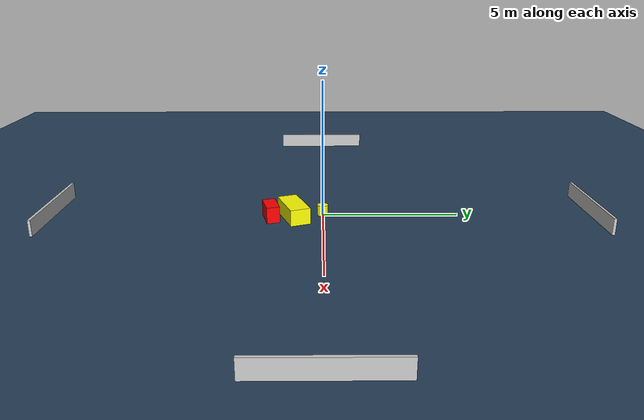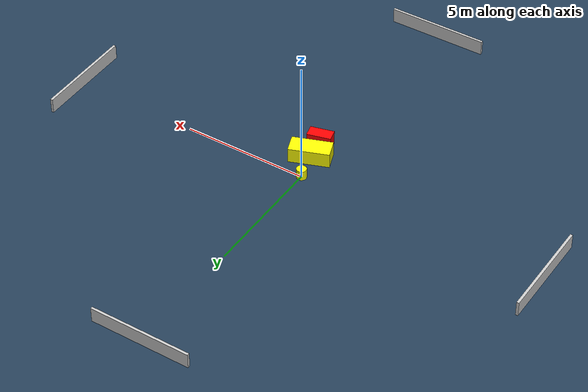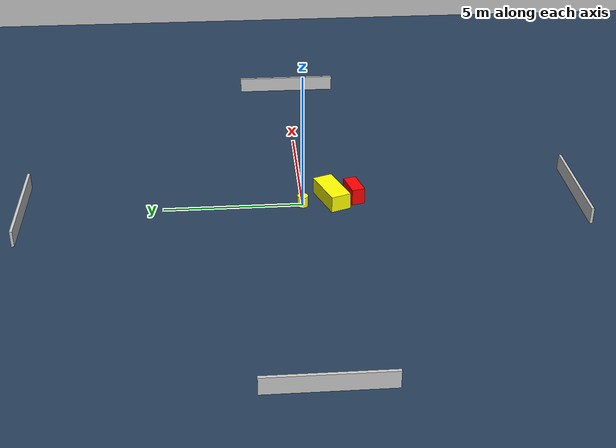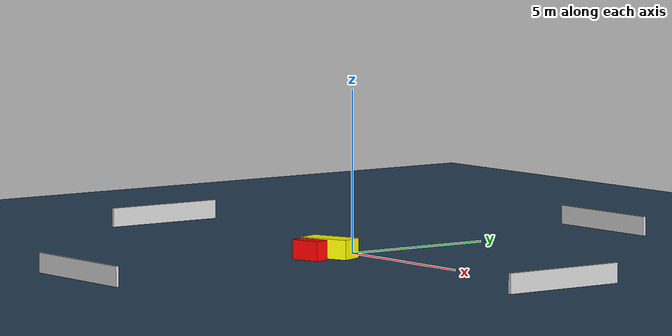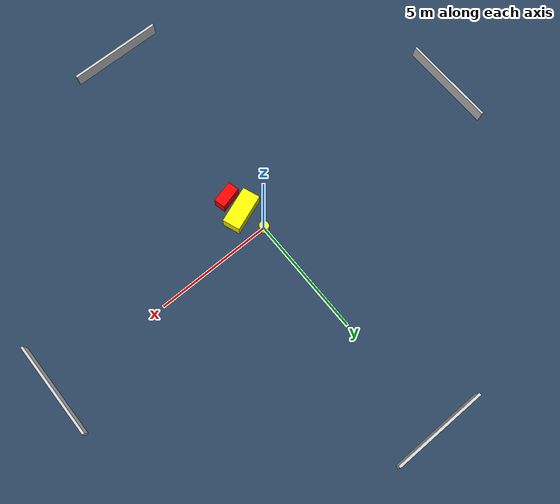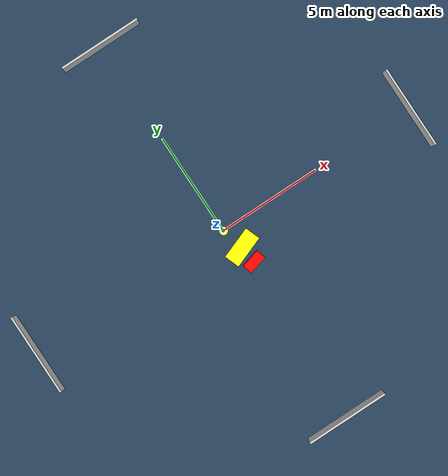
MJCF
<?xml version="1.0" ?>
<mujoco model="generated_environment">
  <option timestep="0.01" integrator="RK4" cone="elliptic"/>
  <default>
    <geom density="1"/>
  </default>
  <asset>
    <texture builtin="gradient" height="3072" name="skybox" rgb1="0.3 0.5 0.7" rgb2="0 0 0" type="skybox" width="512"/>
    <texture builtin="checker" height="300" name="groundplane" rgb1="0.2 0.3 0.4" rgb2="0.1 0.2 0.3" type="2d" width="300"/>
    <material name="groundplane" reflectance="0.2" texrepeat="5 5" texture="groundplane"/>
  </asset>
  <worldbody>
    <light dir="0 0 -1" directional="true" pos="0 0 1.5"/>
    <geom condim="3" friction="0.5 0.005 0.001" material="groundplane" name="floor" pos="0 0 0" size="0 0 0.05" type="plane"/>
    <body name="walls">
      <geom name="wall_1" condim="4" pos="-10.0 0.0 0.3" rgba="0.800000011920929 0.800000011920929 0.800000011920929 1.0" size="0.05 2.0 0.3" type="box"/>
      <geom name="wall_2" condim="4" pos="10.0 0.0 0.3" rgba="0.800000011920929 0.800000011920929 0.800000011920929 1.0" size="0.05 2.0 0.3" type="box"/>
      <geom name="wall_3" condim="4" pos="0.0 -10.0 0.3" rgba="0.800000011920929 0.800000011920929 0.800000011920929 1.0" size="2.0 0.05 0.3" type="box"/>
      <geom name="wall_4" condim="4" pos="0.0 10.0 0.3" rgba="0.800000011920929 0.800000011920929 0.800000011920929 1.0" size="2.0 0.05 0.3" type="box"/>
    </body>
    <body name="robot">
      <joint name="joint_x" type="slide" pos="0 0 0" axis="1 0 0"/>
      <joint name="joint_y" type="slide" pos="0 0 0" axis="0 1 0"/>
      <geom name="robot" type="cylinder" pos="0.0 0.0 0.2" size="0.2 0.2 0.0" mass="5.0" friction="1.0 0.005 0.0001" condim="4" rgba="1.0 1.0 0.0 1.0"/>
    </body>
    <body name="obstacle_1_movable">
      <geom name="obstacle_1_movable" condim="4" pos="0.2873400236662953 -1.0689495982454318 0.3" euler="0 0 110.42990378647625" friction="0.0 0.005 0.001" rgba="1.0 1.0 0.0 1.0" size="0.372600465903019 0.7921149609432965 0.3" type="box" mass="0.1"/>
      <joint type="free"/>
    </body>
    <body name="obstacle_2_static">
      <geom name="obstacle_2_static" condim="4" pos="0.3804751865713689 -1.894555460448444 0.3" euler="0 0 14.420401043880368" friction="0.0 0.005 0.001" rgba="1.0 0.0 0.0 1.0" size="0.46891654345455014 0.23830279793430076 0.3" type="box"/>
    </body>
  </worldbody>
  <actuator>
    <motor name="actuator_x" joint="joint_x" gear="1" ctrlrange="-1 1"/>
    <motor name="actuator_y" joint="joint_y" gear="1" ctrlrange="-1 1"/>
  </actuator>
</mujoco>
